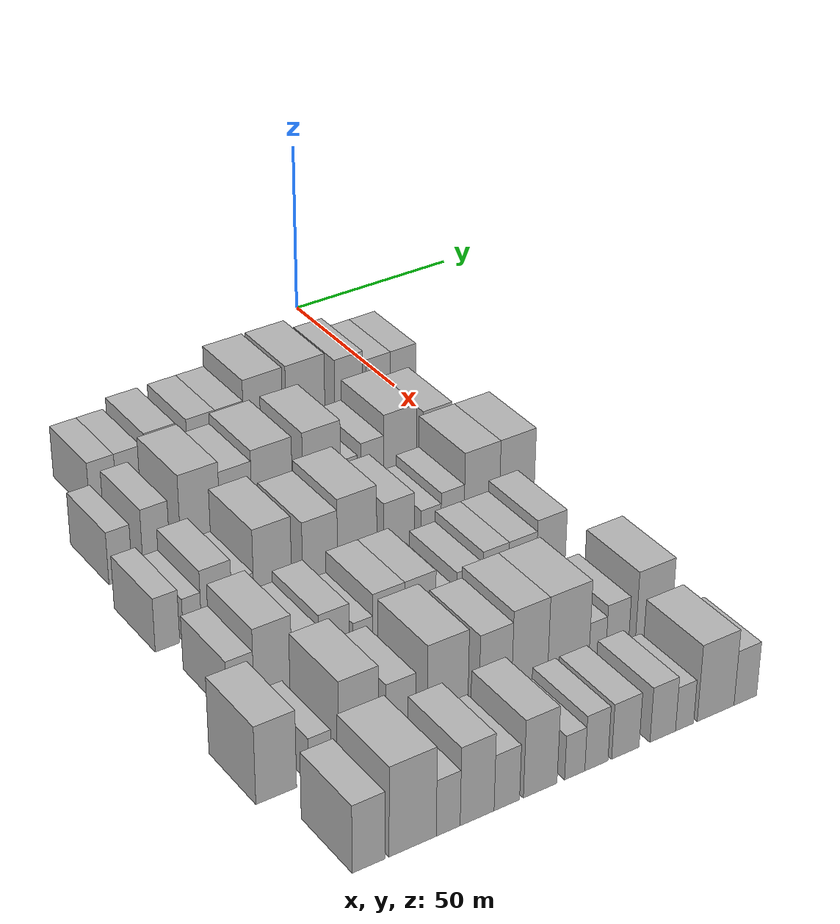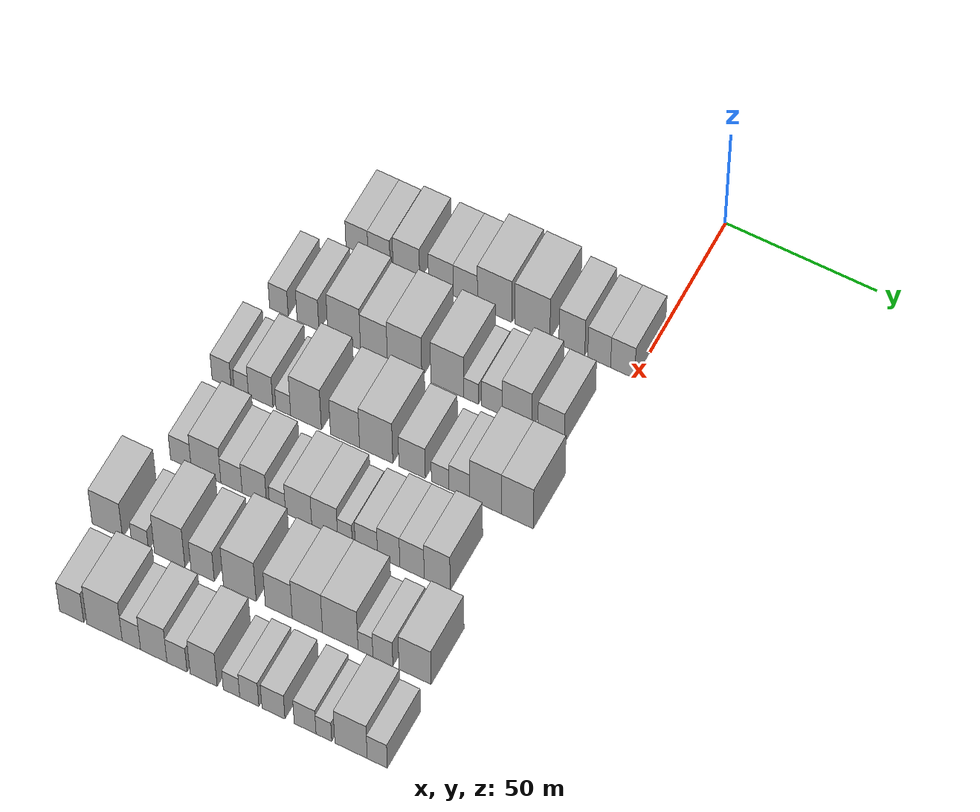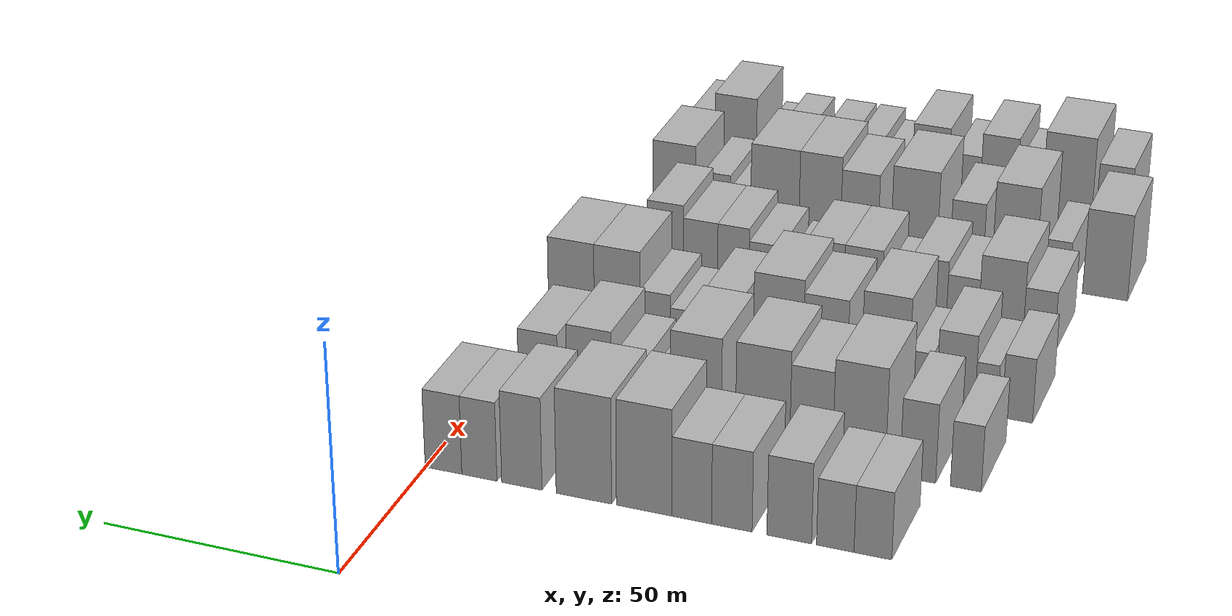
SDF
<sdf version="1.6">
 <world name="default">
  <model name="building_46">
   <static>1</static>
   <pose>50.0000 -92.5808 0 0.000000 0.000000 0.000000</pose>
   <link name="link">
    <pose>0 0 7.50 0 0 0</pose>
    <collision name="collision"><geometry><box><size>20.0000 7.4687 15.0000</size></box></geometry></collision>
    <visual name="visual">
     <cast_shadows>0</cast_shadows>
     <geometry><box><size>20.0000 7.4687 15.0000</size></box></geometry>
     <material>
      <script>
       <uri>model://HANNAS_wall/materials/scripts</uri>
       <uri>model://HANNAS_wall/materials/textures</uri>
       <name>vrc/HANNAS_wall</name>
      </script>
     </material>
    </visual>
   </link>
  </model>
  <model name="building_47">
   <static>1</static>
   <pose>50.0000 -85.1229 0 0.000000 0.000000 0.000000</pose>
   <link name="link">
    <pose>0 0 7.50 0 0 0</pose>
    <collision name="collision"><geometry><box><size>20.0000 7.4471 15.0000</size></box></geometry></collision>
    <visual name="visual">
     <cast_shadows>0</cast_shadows>
     <geometry><box><size>20.0000 7.4471 15.0000</size></box></geometry>
     <material>
      <script>
       <uri>model://HANNAS_wall/materials/scripts</uri>
       <uri>model://HANNAS_wall/materials/textures</uri>
       <name>vrc/HANNAS_wall</name>
      </script>
     </material>
    </visual>
   </link>
  </model>
  <model name="building_48">
   <static>1</static>
   <pose>50.0000 -75.9214 0 0.000000 0.000000 0.000000</pose>
   <link name="link">
    <pose>0 0 9.00 0 0 0</pose>
    <collision name="collision"><geometry><box><size>20.0000 8.9559 18.0000</size></box></geometry></collision>
    <visual name="visual">
     <cast_shadows>0</cast_shadows>
     <geometry><box><size>20.0000 8.9559 18.0000</size></box></geometry>
     <material>
      <script>
       <uri>model://HANNAS_wall/materials/scripts</uri>
       <uri>model://HANNAS_wall/materials/textures</uri>
       <name>vrc/HANNAS_wall</name>
      </script>
     </material>
    </visual>
   </link>
  </model>
  <model name="building_49">
   <static>1</static>
   <pose>50.0000 -64.3194 0 0.000000 0.000000 0.000000</pose>
   <link name="link">
    <pose>0 0 9.00 0 0 0</pose>
    <collision name="collision"><geometry><box><size>20.0000 8.2482 18.0000</size></box></geometry></collision>
    <visual name="visual">
     <cast_shadows>0</cast_shadows>
     <geometry><box><size>20.0000 8.2482 18.0000</size></box></geometry>
     <material>
      <script>
       <uri>model://HANNAS_wall/materials/scripts</uri>
       <uri>model://HANNAS_wall/materials/textures</uri>
       <name>vrc/HANNAS_wall</name>
      </script>
     </material>
    </visual>
   </link>
  </model>
  <model name="building_50">
   <static>1</static>
   <pose>50.0000 -56.1262 0 0.000000 0.000000 0.000000</pose>
   <link name="link">
    <pose>0 0 9.00 0 0 0</pose>
    <collision name="collision"><geometry><box><size>20.0000 8.1383 18.0000</size></box></geometry></collision>
    <visual name="visual">
     <cast_shadows>0</cast_shadows>
     <geometry><box><size>20.0000 8.1383 18.0000</size></box></geometry>
     <material>
      <script>
       <uri>model://HANNAS_wall/materials/scripts</uri>
       <uri>model://HANNAS_wall/materials/textures</uri>
       <name>vrc/HANNAS_wall</name>
      </script>
     </material>
    </visual>
   </link>
  </model>
  <model name="building_51">
   <static>1</static>
   <pose>50.0000 -46.3112 0 0.000000 0.000000 0.000000</pose>
   <link name="link">
    <pose>0 0 12.00 0 0 0</pose>
    <collision name="collision"><geometry><box><size>20.0000 11.4917 24.0000</size></box></geometry></collision>
    <visual name="visual">
     <cast_shadows>0</cast_shadows>
     <geometry><box><size>20.0000 11.4917 24.0000</size></box></geometry>
     <material>
      <script>
       <uri>model://HANNAS_wall/materials/scripts</uri>
       <uri>model://HANNAS_wall/materials/textures</uri>
       <name>vrc/HANNAS_wall</name>
      </script>
     </material>
    </visual>
   </link>
  </model>
  <model name="building_52">
   <static>1</static>
   <pose>50.0000 -33.7437 0 0.000000 0.000000 0.000000</pose>
   <link name="link">
    <pose>0 0 12.00 0 0 0</pose>
    <collision name="collision"><geometry><box><size>20.0000 11.6433 24.0000</size></box></geometry></collision>
    <visual name="visual">
     <cast_shadows>0</cast_shadows>
     <geometry><box><size>20.0000 11.6433 24.0000</size></box></geometry>
     <material>
      <script>
       <uri>model://HANNAS_wall/materials/scripts</uri>
       <uri>model://HANNAS_wall/materials/textures</uri>
       <name>vrc/HANNAS_wall</name>
      </script>
     </material>
    </visual>
   </link>
  </model>
  <model name="building_53">
   <static>1</static>
   <pose>50.0000 -20.6224 0 0.000000 0.000000 0.000000</pose>
   <link name="link">
    <pose>0 0 10.50 0 0 0</pose>
    <collision name="collision"><geometry><box><size>20.0000 8.5992 21.0000</size></box></geometry></collision>
    <visual name="visual">
     <cast_shadows>0</cast_shadows>
     <geometry><box><size>20.0000 8.5992 21.0000</size></box></geometry>
     <material>
      <script>
       <uri>model://HANNAS_wall/materials/scripts</uri>
       <uri>model://HANNAS_wall/materials/textures</uri>
       <name>vrc/HANNAS_wall</name>
      </script>
     </material>
    </visual>
   </link>
  </model>
  <model name="building_54">
   <static>1</static>
   <pose>50.0000 -11.5425 0 0.000000 0.000000 0.000000</pose>
   <link name="link">
    <pose>0 0 9.00 0 0 0</pose>
    <collision name="collision"><geometry><box><size>20.0000 7.5606 18.0000</size></box></geometry></collision>
    <visual name="visual">
     <cast_shadows>0</cast_shadows>
     <geometry><box><size>20.0000 7.5606 18.0000</size></box></geometry>
     <material>
      <script>
       <uri>model://HANNAS_wall/materials/scripts</uri>
       <uri>model://HANNAS_wall/materials/textures</uri>
       <name>vrc/HANNAS_wall</name>
      </script>
     </material>
    </visual>
   </link>
  </model>
  <model name="building_55">
   <static>1</static>
   <pose>50.0000 -3.7868 0 0.000000 0.000000 0.000000</pose>
   <link name="link">
    <pose>0 0 9.00 0 0 0</pose>
    <collision name="collision"><geometry><box><size>20.0000 7.9507 18.0000</size></box></geometry></collision>
    <visual name="visual">
     <cast_shadows>0</cast_shadows>
     <geometry><box><size>20.0000 7.9507 18.0000</size></box></geometry>
     <material>
      <script>
       <uri>model://HANNAS_wall/materials/scripts</uri>
       <uri>model://HANNAS_wall/materials/textures</uri>
       <name>vrc/HANNAS_wall</name>
      </script>
     </material>
    </visual>
   </link>
  </model>
  <model name="building_154">
   <static>1</static>
   <pose>79.0000 -103.1418 0 0.000000 0.000000 0.000000</pose>
   <link name="link">
    <pose>0 0 7.50 0 0 0</pose>
    <collision name="collision"><geometry><box><size>20.0000 6.2578 15.0000</size></box></geometry></collision>
    <visual name="visual">
     <cast_shadows>0</cast_shadows>
     <geometry><box><size>20.0000 6.2578 15.0000</size></box></geometry>
     <material>
      <script>
       <uri>model://HANNAS_wall/materials/scripts</uri>
       <uri>model://HANNAS_wall/materials/textures</uri>
       <name>vrc/HANNAS_wall</name>
      </script>
     </material>
    </visual>
   </link>
  </model>
  <model name="building_155">
   <static>1</static>
   <pose>79.0000 -93.3405 0 0.000000 0.000000 0.000000</pose>
   <link name="link">
    <pose>0 0 9.00 0 0 0</pose>
    <collision name="collision"><geometry><box><size>20.0000 7.3448 18.0000</size></box></geometry></collision>
    <visual name="visual">
     <cast_shadows>0</cast_shadows>
     <geometry><box><size>20.0000 7.3448 18.0000</size></box></geometry>
     <material>
      <script>
       <uri>model://HANNAS_wall/materials/scripts</uri>
       <uri>model://HANNAS_wall/materials/textures</uri>
       <name>vrc/HANNAS_wall</name>
      </script>
     </material>
    </visual>
   </link>
  </model>
  <model name="building_156">
   <static>1</static>
   <pose>79.0000 -81.1883 0 0.000000 0.000000 0.000000</pose>
   <link name="link">
    <pose>0 0 12.00 0 0 0</pose>
    <collision name="collision"><geometry><box><size>20.0000 10.9596 24.0000</size></box></geometry></collision>
    <visual name="visual">
     <cast_shadows>0</cast_shadows>
     <geometry><box><size>20.0000 10.9596 24.0000</size></box></geometry>
     <material>
      <script>
       <uri>model://HANNAS_wall/materials/scripts</uri>
       <uri>model://HANNAS_wall/materials/textures</uri>
       <name>vrc/HANNAS_wall</name>
      </script>
     </material>
    </visual>
   </link>
  </model>
  <model name="building_157">
   <static>1</static>
   <pose>79.0000 -71.2107 0 0.000000 0.000000 0.000000</pose>
   <link name="link">
    <pose>0 0 10.50 0 0 0</pose>
    <collision name="collision"><geometry><box><size>20.0000 8.9955 21.0000</size></box></geometry></collision>
    <visual name="visual">
     <cast_shadows>0</cast_shadows>
     <geometry><box><size>20.0000 8.9955 21.0000</size></box></geometry>
     <material>
      <script>
       <uri>model://HANNAS_wall/materials/scripts</uri>
       <uri>model://HANNAS_wall/materials/textures</uri>
       <name>vrc/HANNAS_wall</name>
      </script>
     </material>
    </visual>
   </link>
  </model>
  <model name="building_158">
   <static>1</static>
   <pose>79.0000 -60.9767 0 0.000000 0.000000 0.000000</pose>
   <link name="link">
    <pose>0 0 12.00 0 0 0</pose>
    <collision name="collision"><geometry><box><size>20.0000 11.4724 24.0000</size></box></geometry></collision>
    <visual name="visual">
     <cast_shadows>0</cast_shadows>
     <geometry><box><size>20.0000 11.4724 24.0000</size></box></geometry>
     <material>
      <script>
       <uri>model://HANNAS_wall/materials/scripts</uri>
       <uri>model://HANNAS_wall/materials/textures</uri>
       <name>vrc/HANNAS_wall</name>
      </script>
     </material>
    </visual>
   </link>
  </model>
  <model name="building_159">
   <static>1</static>
   <pose>79.0000 -46.7814 0 0.000000 0.000000 0.000000</pose>
   <link name="link">
    <pose>0 0 12.00 0 0 0</pose>
    <collision name="collision"><geometry><box><size>20.0000 10.9182 24.0000</size></box></geometry></collision>
    <visual name="visual">
     <cast_shadows>0</cast_shadows>
     <geometry><box><size>20.0000 10.9182 24.0000</size></box></geometry>
     <material>
      <script>
       <uri>model://HANNAS_wall/materials/scripts</uri>
       <uri>model://HANNAS_wall/materials/textures</uri>
       <name>vrc/HANNAS_wall</name>
      </script>
     </material>
    </visual>
   </link>
  </model>
  <model name="building_160">
   <static>1</static>
   <pose>79.0000 -38.8600 0 0.000000 0.000000 0.000000</pose>
   <link name="link">
    <pose>0 0 6.00 0 0 0</pose>
    <collision name="collision"><geometry><box><size>20.0000 4.9247 12.0000</size></box></geometry></collision>
    <visual name="visual">
     <cast_shadows>0</cast_shadows>
     <geometry><box><size>20.0000 4.9247 12.0000</size></box></geometry>
     <material>
      <script>
       <uri>model://HANNAS_wall/materials/scripts</uri>
       <uri>model://HANNAS_wall/materials/textures</uri>
       <name>vrc/HANNAS_wall</name>
      </script>
     </material>
    </visual>
   </link>
  </model>
  <model name="building_161">
   <static>1</static>
   <pose>79.0000 -31.9827 0 0.000000 0.000000 0.000000</pose>
   <link name="link">
    <pose>0 0 7.50 0 0 0</pose>
    <collision name="collision"><geometry><box><size>20.0000 6.8297 15.0000</size></box></geometry></collision>
    <visual name="visual">
     <cast_shadows>0</cast_shadows>
     <geometry><box><size>20.0000 6.8297 15.0000</size></box></geometry>
     <material>
      <script>
       <uri>model://HANNAS_wall/materials/scripts</uri>
       <uri>model://HANNAS_wall/materials/textures</uri>
       <name>vrc/HANNAS_wall</name>
      </script>
     </material>
    </visual>
   </link>
  </model>
  <model name="building_162">
   <static>1</static>
   <pose>79.0000 -23.6695 0 0.000000 0.000000 0.000000</pose>
   <link name="link">
    <pose>0 0 10.50 0 0 0</pose>
    <collision name="collision"><geometry><box><size>20.0000 9.7967 21.0000</size></box></geometry></collision>
    <visual name="visual">
     <cast_shadows>0</cast_shadows>
     <geometry><box><size>20.0000 9.7967 21.0000</size></box></geometry>
     <material>
      <script>
       <uri>model://HANNAS_wall/materials/scripts</uri>
       <uri>model://HANNAS_wall/materials/textures</uri>
       <name>vrc/HANNAS_wall</name>
      </script>
     </material>
    </visual>
   </link>
  </model>
  <model name="building_163">
   <static>1</static>
   <pose>79.0000 -12.4362 0 0.000000 0.000000 0.000000</pose>
   <link name="link">
    <pose>0 0 9.00 0 0 0</pose>
    <collision name="collision"><geometry><box><size>20.0000 8.6699 18.0000</size></box></geometry></collision>
    <visual name="visual">
     <cast_shadows>0</cast_shadows>
     <geometry><box><size>20.0000 8.6699 18.0000</size></box></geometry>
     <material>
      <script>
       <uri>model://HANNAS_wall/materials/scripts</uri>
       <uri>model://HANNAS_wall/materials/textures</uri>
       <name>vrc/HANNAS_wall</name>
      </script>
     </material>
    </visual>
   </link>
  </model>
  <model name="building_266">
   <static>1</static>
   <pose>108.0000 -106.3986 0 0.000000 0.000000 0.000000</pose>
   <link name="link">
    <pose>0 0 7.50 0 0 0</pose>
    <collision name="collision"><geometry><box><size>20.0000 6.4155 15.0000</size></box></geometry></collision>
    <visual name="visual">
     <cast_shadows>0</cast_shadows>
     <geometry><box><size>20.0000 6.4155 15.0000</size></box></geometry>
     <material>
      <script>
       <uri>model://HANNAS_wall/materials/scripts</uri>
       <uri>model://HANNAS_wall/materials/textures</uri>
       <name>vrc/HANNAS_wall</name>
      </script>
     </material>
    </visual>
   </link>
  </model>
  <model name="building_267">
   <static>1</static>
   <pose>108.0000 -99.7860 0 0.000000 0.000000 0.000000</pose>
   <link name="link">
    <pose>0 0 6.00 0 0 0</pose>
    <collision name="collision"><geometry><box><size>20.0000 4.8097 12.0000</size></box></geometry></collision>
    <visual name="visual">
     <cast_shadows>0</cast_shadows>
     <geometry><box><size>20.0000 4.8097 12.0000</size></box></geometry>
     <material>
      <script>
       <uri>model://HANNAS_wall/materials/scripts</uri>
       <uri>model://HANNAS_wall/materials/textures</uri>
       <name>vrc/HANNAS_wall</name>
      </script>
     </material>
    </visual>
   </link>
  </model>
  <model name="building_268">
   <static>1</static>
   <pose>108.0000 -93.2924 0 0.000000 0.000000 0.000000</pose>
   <link name="link">
    <pose>0 0 9.00 0 0 0</pose>
    <collision name="collision"><geometry><box><size>20.0000 8.1775 18.0000</size></box></geometry></collision>
    <visual name="visual">
     <cast_shadows>0</cast_shadows>
     <geometry><box><size>20.0000 8.1775 18.0000</size></box></geometry>
     <material>
      <script>
       <uri>model://HANNAS_wall/materials/scripts</uri>
       <uri>model://HANNAS_wall/materials/textures</uri>
       <name>vrc/HANNAS_wall</name>
      </script>
     </material>
    </visual>
   </link>
  </model>
  <model name="building_269">
   <static>1</static>
   <pose>108.0000 -85.7434 0 0.000000 0.000000 0.000000</pose>
   <link name="link">
    <pose>0 0 6.00 0 0 0</pose>
    <collision name="collision"><geometry><box><size>20.0000 4.9205 12.0000</size></box></geometry></collision>
    <visual name="visual">
     <cast_shadows>0</cast_shadows>
     <geometry><box><size>20.0000 4.9205 12.0000</size></box></geometry>
     <material>
      <script>
       <uri>model://HANNAS_wall/materials/scripts</uri>
       <uri>model://HANNAS_wall/materials/textures</uri>
       <name>vrc/HANNAS_wall</name>
      </script>
     </material>
    </visual>
   </link>
  </model>
  <model name="building_270">
   <static>1</static>
   <pose>108.0000 -78.1503 0 0.000000 0.000000 0.000000</pose>
   <link name="link">
    <pose>0 0 12.00 0 0 0</pose>
    <collision name="collision"><geometry><box><size>20.0000 10.2657 24.0000</size></box></geometry></collision>
    <visual name="visual">
     <cast_shadows>0</cast_shadows>
     <geometry><box><size>20.0000 10.2657 24.0000</size></box></geometry>
     <material>
      <script>
       <uri>model://HANNAS_wall/materials/scripts</uri>
       <uri>model://HANNAS_wall/materials/textures</uri>
       <name>vrc/HANNAS_wall</name>
      </script>
     </material>
    </visual>
   </link>
  </model>
  <model name="building_271">
   <static>1</static>
   <pose>108.0000 -65.1845 0 0.000000 0.000000 0.000000</pose>
   <link name="link">
    <pose>0 0 10.50 0 0 0</pose>
    <collision name="collision"><geometry><box><size>20.0000 9.6660 21.0000</size></box></geometry></collision>
    <visual name="visual">
     <cast_shadows>0</cast_shadows>
     <geometry><box><size>20.0000 9.6660 21.0000</size></box></geometry>
     <material>
      <script>
       <uri>model://HANNAS_wall/materials/scripts</uri>
       <uri>model://HANNAS_wall/materials/textures</uri>
       <name>vrc/HANNAS_wall</name>
      </script>
     </material>
    </visual>
   </link>
  </model>
  <model name="building_272">
   <static>1</static>
   <pose>108.0000 -54.8448 0 0.000000 0.000000 0.000000</pose>
   <link name="link">
    <pose>0 0 12.00 0 0 0</pose>
    <collision name="collision"><geometry><box><size>20.0000 11.0133 24.0000</size></box></geometry></collision>
    <visual name="visual">
     <cast_shadows>0</cast_shadows>
     <geometry><box><size>20.0000 11.0133 24.0000</size></box></geometry>
     <material>
      <script>
       <uri>model://HANNAS_wall/materials/scripts</uri>
       <uri>model://HANNAS_wall/materials/textures</uri>
       <name>vrc/HANNAS_wall</name>
      </script>
     </material>
    </visual>
   </link>
  </model>
  <model name="building_273">
   <static>1</static>
   <pose>108.0000 -42.9701 0 0.000000 0.000000 0.000000</pose>
   <link name="link">
    <pose>0 0 9.00 0 0 0</pose>
    <collision name="collision"><geometry><box><size>20.0000 8.7361 18.0000</size></box></geometry></collision>
    <visual name="visual">
     <cast_shadows>0</cast_shadows>
     <geometry><box><size>20.0000 8.7361 18.0000</size></box></geometry>
     <material>
      <script>
       <uri>model://HANNAS_wall/materials/scripts</uri>
       <uri>model://HANNAS_wall/materials/textures</uri>
       <name>vrc/HANNAS_wall</name>
      </script>
     </material>
    </visual>
   </link>
  </model>
  <model name="building_274">
   <static>1</static>
   <pose>108.0000 -33.7330 0 0.000000 0.000000 0.000000</pose>
   <link name="link">
    <pose>0 0 6.00 0 0 0</pose>
    <collision name="collision"><geometry><box><size>20.0000 5.7382 12.0000</size></box></geometry></collision>
    <visual name="visual">
     <cast_shadows>0</cast_shadows>
     <geometry><box><size>20.0000 5.7382 12.0000</size></box></geometry>
     <material>
      <script>
       <uri>model://HANNAS_wall/materials/scripts</uri>
       <uri>model://HANNAS_wall/materials/textures</uri>
       <name>vrc/HANNAS_wall</name>
      </script>
     </material>
    </visual>
   </link>
  </model>
  <model name="building_275">
   <static>1</static>
   <pose>108.0000 -27.4761 0 0.000000 0.000000 0.000000</pose>
   <link name="link">
    <pose>0 0 7.50 0 0 0</pose>
    <collision name="collision"><geometry><box><size>20.0000 6.7756 15.0000</size></box></geometry></collision>
    <visual name="visual">
     <cast_shadows>0</cast_shadows>
     <geometry><box><size>20.0000 6.7756 15.0000</size></box></geometry>
     <material>
      <script>
       <uri>model://HANNAS_wall/materials/scripts</uri>
       <uri>model://HANNAS_wall/materials/textures</uri>
       <name>vrc/HANNAS_wall</name>
      </script>
     </material>
    </visual>
   </link>
  </model>
  <model name="building_276">
   <static>1</static>
   <pose>108.0000 -18.8655 0 0.000000 0.000000 0.000000</pose>
   <link name="link">
    <pose>0 0 12.00 0 0 0</pose>
    <collision name="collision"><geometry><box><size>20.0000 10.4457 24.0000</size></box></geometry></collision>
    <visual name="visual">
     <cast_shadows>0</cast_shadows>
     <geometry><box><size>20.0000 10.4457 24.0000</size></box></geometry>
     <material>
      <script>
       <uri>model://HANNAS_wall/materials/scripts</uri>
       <uri>model://HANNAS_wall/materials/textures</uri>
       <name>vrc/HANNAS_wall</name>
      </script>
     </material>
    </visual>
   </link>
  </model>
  <model name="building_277">
   <static>1</static>
   <pose>108.0000 -8.4006 0 0.000000 0.000000 0.000000</pose>
   <link name="link">
    <pose>0 0 12.00 0 0 0</pose>
    <collision name="collision"><geometry><box><size>20.0000 10.4841 24.0000</size></box></geometry></collision>
    <visual name="visual">
     <cast_shadows>0</cast_shadows>
     <geometry><box><size>20.0000 10.4841 24.0000</size></box></geometry>
     <material>
      <script>
       <uri>model://HANNAS_wall/materials/scripts</uri>
       <uri>model://HANNAS_wall/materials/textures</uri>
       <name>vrc/HANNAS_wall</name>
      </script>
     </material>
    </visual>
   </link>
  </model>
  <model name="building_381">
   <static>1</static>
   <pose>137.0000 -103.8571 0 0.000000 0.000000 0.000000</pose>
   <link name="link">
    <pose>0 0 7.50 0 0 0</pose>
    <collision name="collision"><geometry><box><size>20.0000 6.9240 15.0000</size></box></geometry></collision>
    <visual name="visual">
     <cast_shadows>0</cast_shadows>
     <geometry><box><size>20.0000 6.9240 15.0000</size></box></geometry>
     <material>
      <script>
       <uri>model://HANNAS_wall/materials/scripts</uri>
       <uri>model://HANNAS_wall/materials/textures</uri>
       <name>vrc/HANNAS_wall</name>
      </script>
     </material>
    </visual>
   </link>
  </model>
  <model name="building_382">
   <static>1</static>
   <pose>137.0000 -95.4674 0 0.000000 0.000000 0.000000</pose>
   <link name="link">
    <pose>0 0 10.50 0 0 0</pose>
    <collision name="collision"><geometry><box><size>20.0000 9.8554 21.0000</size></box></geometry></collision>
    <visual name="visual">
     <cast_shadows>0</cast_shadows>
     <geometry><box><size>20.0000 9.8554 21.0000</size></box></geometry>
     <material>
      <script>
       <uri>model://HANNAS_wall/materials/scripts</uri>
       <uri>model://HANNAS_wall/materials/textures</uri>
       <name>vrc/HANNAS_wall</name>
      </script>
     </material>
    </visual>
   </link>
  </model>
  <model name="building_383">
   <static>1</static>
   <pose>137.0000 -87.0001 0 0.000000 0.000000 0.000000</pose>
   <link name="link">
    <pose>0 0 7.50 0 0 0</pose>
    <collision name="collision"><geometry><box><size>20.0000 7.0792 15.0000</size></box></geometry></collision>
    <visual name="visual">
     <cast_shadows>0</cast_shadows>
     <geometry><box><size>20.0000 7.0792 15.0000</size></box></geometry>
     <material>
      <script>
       <uri>model://HANNAS_wall/materials/scripts</uri>
       <uri>model://HANNAS_wall/materials/textures</uri>
       <name>vrc/HANNAS_wall</name>
      </script>
     </material>
    </visual>
   </link>
  </model>
  <model name="building_384">
   <static>1</static>
   <pose>137.0000 -79.4112 0 0.000000 0.000000 0.000000</pose>
   <link name="link">
    <pose>0 0 9.00 0 0 0</pose>
    <collision name="collision"><geometry><box><size>20.0000 8.0986 18.0000</size></box></geometry></collision>
    <visual name="visual">
     <cast_shadows>0</cast_shadows>
     <geometry><box><size>20.0000 8.0986 18.0000</size></box></geometry>
     <material>
      <script>
       <uri>model://HANNAS_wall/materials/scripts</uri>
       <uri>model://HANNAS_wall/materials/textures</uri>
       <name>vrc/HANNAS_wall</name>
      </script>
     </material>
    </visual>
   </link>
  </model>
  <model name="building_385">
   <static>1</static>
   <pose>137.0000 -71.7233 0 0.000000 0.000000 0.000000</pose>
   <link name="link">
    <pose>0 0 6.00 0 0 0</pose>
    <collision name="collision"><geometry><box><size>20.0000 5.2771 12.0000</size></box></geometry></collision>
    <visual name="visual">
     <cast_shadows>0</cast_shadows>
     <geometry><box><size>20.0000 5.2771 12.0000</size></box></geometry>
     <material>
      <script>
       <uri>model://HANNAS_wall/materials/scripts</uri>
       <uri>model://HANNAS_wall/materials/textures</uri>
       <name>vrc/HANNAS_wall</name>
      </script>
     </material>
    </visual>
   </link>
  </model>
  <model name="building_386">
   <static>1</static>
   <pose>137.0000 -64.7587 0 0.000000 0.000000 0.000000</pose>
   <link name="link">
    <pose>0 0 9.00 0 0 0</pose>
    <collision name="collision"><geometry><box><size>20.0000 8.6523 18.0000</size></box></geometry></collision>
    <visual name="visual">
     <cast_shadows>0</cast_shadows>
     <geometry><box><size>20.0000 8.6523 18.0000</size></box></geometry>
     <material>
      <script>
       <uri>model://HANNAS_wall/materials/scripts</uri>
       <uri>model://HANNAS_wall/materials/textures</uri>
       <name>vrc/HANNAS_wall</name>
      </script>
     </material>
    </visual>
   </link>
  </model>
  <model name="building_387">
   <static>1</static>
   <pose>137.0000 -56.1689 0 0.000000 0.000000 0.000000</pose>
   <link name="link">
    <pose>0 0 9.00 0 0 0</pose>
    <collision name="collision"><geometry><box><size>20.0000 8.5272 18.0000</size></box></geometry></collision>
    <visual name="visual">
     <cast_shadows>0</cast_shadows>
     <geometry><box><size>20.0000 8.5272 18.0000</size></box></geometry>
     <material>
      <script>
       <uri>model://HANNAS_wall/materials/scripts</uri>
       <uri>model://HANNAS_wall/materials/textures</uri>
       <name>vrc/HANNAS_wall</name>
      </script>
     </material>
    </visual>
   </link>
  </model>
  <model name="building_388">
   <static>1</static>
   <pose>137.0000 -49.4982 0 0.000000 0.000000 0.000000</pose>
   <link name="link">
    <pose>0 0 6.00 0 0 0</pose>
    <collision name="collision"><geometry><box><size>20.0000 4.8143 12.0000</size></box></geometry></collision>
    <visual name="visual">
     <cast_shadows>0</cast_shadows>
     <geometry><box><size>20.0000 4.8143 12.0000</size></box></geometry>
     <material>
      <script>
       <uri>model://HANNAS_wall/materials/scripts</uri>
       <uri>model://HANNAS_wall/materials/textures</uri>
       <name>vrc/HANNAS_wall</name>
      </script>
     </material>
    </visual>
   </link>
  </model>
  <model name="building_389">
   <static>1</static>
   <pose>137.0000 -42.4382 0 0.000000 0.000000 0.000000</pose>
   <link name="link">
    <pose>0 0 7.50 0 0 0</pose>
    <collision name="collision"><geometry><box><size>20.0000 7.3056 15.0000</size></box></geometry></collision>
    <visual name="visual">
     <cast_shadows>0</cast_shadows>
     <geometry><box><size>20.0000 7.3056 15.0000</size></box></geometry>
     <material>
      <script>
       <uri>model://HANNAS_wall/materials/scripts</uri>
       <uri>model://HANNAS_wall/materials/textures</uri>
       <name>vrc/HANNAS_wall</name>
      </script>
     </material>
    </visual>
   </link>
  </model>
  <model name="building_390">
   <static>1</static>
   <pose>137.0000 -35.1333 0 0.000000 0.000000 0.000000</pose>
   <link name="link">
    <pose>0 0 9.00 0 0 0</pose>
    <collision name="collision"><geometry><box><size>20.0000 7.3041 18.0000</size></box></geometry></collision>
    <visual name="visual">
     <cast_shadows>0</cast_shadows>
     <geometry><box><size>20.0000 7.3041 18.0000</size></box></geometry>
     <material>
      <script>
       <uri>model://HANNAS_wall/materials/scripts</uri>
       <uri>model://HANNAS_wall/materials/textures</uri>
       <name>vrc/HANNAS_wall</name>
      </script>
     </material>
    </visual>
   </link>
  </model>
  <model name="building_391">
   <static>1</static>
   <pose>137.0000 -27.4933 0 0.000000 0.000000 0.000000</pose>
   <link name="link">
    <pose>0 0 9.00 0 0 0</pose>
    <collision name="collision"><geometry><box><size>20.0000 7.9760 18.0000</size></box></geometry></collision>
    <visual name="visual">
     <cast_shadows>0</cast_shadows>
     <geometry><box><size>20.0000 7.9760 18.0000</size></box></geometry>
     <material>
      <script>
       <uri>model://HANNAS_wall/materials/scripts</uri>
       <uri>model://HANNAS_wall/materials/textures</uri>
       <name>vrc/HANNAS_wall</name>
      </script>
     </material>
    </visual>
   </link>
  </model>
  <model name="building_392">
   <static>1</static>
   <pose>137.0000 -19.2705 0 0.000000 0.000000 0.000000</pose>
   <link name="link">
    <pose>0 0 10.50 0 0 0</pose>
    <collision name="collision"><geometry><box><size>20.0000 8.4695 21.0000</size></box></geometry></collision>
    <visual name="visual">
     <cast_shadows>0</cast_shadows>
     <geometry><box><size>20.0000 8.4695 21.0000</size></box></geometry>
     <material>
      <script>
       <uri>model://HANNAS_wall/materials/scripts</uri>
       <uri>model://HANNAS_wall/materials/textures</uri>
       <name>vrc/HANNAS_wall</name>
      </script>
     </material>
    </visual>
   </link>
  </model>
  <model name="building_493">
   <static>1</static>
   <pose>166.0000 -112.0260 0 0.000000 0.000000 0.000000</pose>
   <link name="link">
    <pose>0 0 10.50 0 0 0</pose>
    <collision name="collision"><geometry><box><size>20.0000 10.0948 21.0000</size></box></geometry></collision>
    <visual name="visual">
     <cast_shadows>0</cast_shadows>
     <geometry><box><size>20.0000 10.0948 21.0000</size></box></geometry>
     <material>
      <script>
       <uri>model://HANNAS_wall/materials/scripts</uri>
       <uri>model://HANNAS_wall/materials/textures</uri>
       <name>vrc/HANNAS_wall</name>
      </script>
     </material>
    </visual>
   </link>
  </model>
  <model name="building_494">
   <static>1</static>
   <pose>166.0000 -101.1664 0 0.000000 0.000000 0.000000</pose>
   <link name="link">
    <pose>0 0 6.00 0 0 0</pose>
    <collision name="collision"><geometry><box><size>20.0000 5.6244 12.0000</size></box></geometry></collision>
    <visual name="visual">
     <cast_shadows>0</cast_shadows>
     <geometry><box><size>20.0000 5.6244 12.0000</size></box></geometry>
     <material>
      <script>
       <uri>model://HANNAS_wall/materials/scripts</uri>
       <uri>model://HANNAS_wall/materials/textures</uri>
       <name>vrc/HANNAS_wall</name>
      </script>
     </material>
    </visual>
   </link>
  </model>
  <model name="building_495">
   <static>1</static>
   <pose>166.0000 -91.3128 0 0.000000 0.000000 0.000000</pose>
   <link name="link">
    <pose>0 0 12.00 0 0 0</pose>
    <collision name="collision"><geometry><box><size>20.0000 10.0829 24.0000</size></box></geometry></collision>
    <visual name="visual">
     <cast_shadows>0</cast_shadows>
     <geometry><box><size>20.0000 10.0829 24.0000</size></box></geometry>
     <material>
      <script>
       <uri>model://HANNAS_wall/materials/scripts</uri>
       <uri>model://HANNAS_wall/materials/textures</uri>
       <name>vrc/HANNAS_wall</name>
      </script>
     </material>
    </visual>
   </link>
  </model>
  <model name="building_496">
   <static>1</static>
   <pose>166.0000 -80.4302 0 0.000000 0.000000 0.000000</pose>
   <link name="link">
    <pose>0 0 9.00 0 0 0</pose>
    <collision name="collision"><geometry><box><size>20.0000 7.6822 18.0000</size></box></geometry></collision>
    <visual name="visual">
     <cast_shadows>0</cast_shadows>
     <geometry><box><size>20.0000 7.6822 18.0000</size></box></geometry>
     <material>
      <script>
       <uri>model://HANNAS_wall/materials/scripts</uri>
       <uri>model://HANNAS_wall/materials/textures</uri>
       <name>vrc/HANNAS_wall</name>
      </script>
     </material>
    </visual>
   </link>
  </model>
  <model name="building_497">
   <static>1</static>
   <pose>166.0000 -68.1920 0 0.000000 0.000000 0.000000</pose>
   <link name="link">
    <pose>0 0 12.00 0 0 0</pose>
    <collision name="collision"><geometry><box><size>20.0000 10.7942 24.0000</size></box></geometry></collision>
    <visual name="visual">
     <cast_shadows>0</cast_shadows>
     <geometry><box><size>20.0000 10.7942 24.0000</size></box></geometry>
     <material>
      <script>
       <uri>model://HANNAS_wall/materials/scripts</uri>
       <uri>model://HANNAS_wall/materials/textures</uri>
       <name>vrc/HANNAS_wall</name>
      </script>
     </material>
    </visual>
   </link>
  </model>
  <model name="building_498">
   <static>1</static>
   <pose>166.0000 -55.3844 0 0.000000 0.000000 0.000000</pose>
   <link name="link">
    <pose>0 0 10.50 0 0 0</pose>
    <collision name="collision"><geometry><box><size>20.0000 8.8209 21.0000</size></box></geometry></collision>
    <visual name="visual">
     <cast_shadows>0</cast_shadows>
     <geometry><box><size>20.0000 8.8209 21.0000</size></box></geometry>
     <material>
      <script>
       <uri>model://HANNAS_wall/materials/scripts</uri>
       <uri>model://HANNAS_wall/materials/textures</uri>
       <name>vrc/HANNAS_wall</name>
      </script>
     </material>
    </visual>
   </link>
  </model>
  <model name="building_499">
   <static>1</static>
   <pose>166.0000 -46.0244 0 0.000000 0.000000 0.000000</pose>
   <link name="link">
    <pose>0 0 12.00 0 0 0</pose>
    <collision name="collision"><geometry><box><size>20.0000 9.8991 24.0000</size></box></geometry></collision>
    <visual name="visual">
     <cast_shadows>0</cast_shadows>
     <geometry><box><size>20.0000 9.8991 24.0000</size></box></geometry>
     <material>
      <script>
       <uri>model://HANNAS_wall/materials/scripts</uri>
       <uri>model://HANNAS_wall/materials/textures</uri>
       <name>vrc/HANNAS_wall</name>
      </script>
     </material>
    </visual>
   </link>
  </model>
  <model name="building_500">
   <static>1</static>
   <pose>166.0000 -35.2926 0 0.000000 0.000000 0.000000</pose>
   <link name="link">
    <pose>0 0 12.00 0 0 0</pose>
    <collision name="collision"><geometry><box><size>20.0000 11.5645 24.0000</size></box></geometry></collision>
    <visual name="visual">
     <cast_shadows>0</cast_shadows>
     <geometry><box><size>20.0000 11.5645 24.0000</size></box></geometry>
     <material>
      <script>
       <uri>model://HANNAS_wall/materials/scripts</uri>
       <uri>model://HANNAS_wall/materials/textures</uri>
       <name>vrc/HANNAS_wall</name>
      </script>
     </material>
    </visual>
   </link>
  </model>
  <model name="building_501">
   <static>1</static>
   <pose>166.0000 -27.0960 0 0.000000 0.000000 0.000000</pose>
   <link name="link">
    <pose>0 0 6.00 0 0 0</pose>
    <collision name="collision"><geometry><box><size>20.0000 4.8288 12.0000</size></box></geometry></collision>
    <visual name="visual">
     <cast_shadows>0</cast_shadows>
     <geometry><box><size>20.0000 4.8288 12.0000</size></box></geometry>
     <material>
      <script>
       <uri>model://HANNAS_wall/materials/scripts</uri>
       <uri>model://HANNAS_wall/materials/textures</uri>
       <name>vrc/HANNAS_wall</name>
      </script>
     </material>
    </visual>
   </link>
  </model>
  <model name="building_502">
   <static>1</static>
   <pose>166.0000 -21.4399 0 0.000000 0.000000 0.000000</pose>
   <link name="link">
    <pose>0 0 7.50 0 0 0</pose>
    <collision name="collision"><geometry><box><size>20.0000 6.4834 15.0000</size></box></geometry></collision>
    <visual name="visual">
     <cast_shadows>0</cast_shadows>
     <geometry><box><size>20.0000 6.4834 15.0000</size></box></geometry>
     <material>
      <script>
       <uri>model://HANNAS_wall/materials/scripts</uri>
       <uri>model://HANNAS_wall/materials/textures</uri>
       <name>vrc/HANNAS_wall</name>
      </script>
     </material>
    </visual>
   </link>
  </model>
  <model name="building_503">
   <static>1</static>
   <pose>166.0000 -10.9867 0 0.000000 0.000000 0.000000</pose>
   <link name="link">
    <pose>0 0 10.50 0 0 0</pose>
    <collision name="collision"><geometry><box><size>20.0000 10.4229 21.0000</size></box></geometry></collision>
    <visual name="visual">
     <cast_shadows>0</cast_shadows>
     <geometry><box><size>20.0000 10.4229 21.0000</size></box></geometry>
     <material>
      <script>
       <uri>model://HANNAS_wall/materials/scripts</uri>
       <uri>model://HANNAS_wall/materials/textures</uri>
       <name>vrc/HANNAS_wall</name>
      </script>
     </material>
    </visual>
   </link>
  </model>
  <model name="building_605">
   <static>1</static>
   <pose>195.0000 -107.3223 0 0.000000 0.000000 0.000000</pose>
   <link name="link">
    <pose>0 0 9.00 0 0 0</pose>
    <collision name="collision"><geometry><box><size>20.0000 7.9897 18.0000</size></box></geometry></collision>
    <visual name="visual">
     <cast_shadows>0</cast_shadows>
     <geometry><box><size>20.0000 7.9897 18.0000</size></box></geometry>
     <material>
      <script>
       <uri>model://HANNAS_wall/materials/scripts</uri>
       <uri>model://HANNAS_wall/materials/textures</uri>
       <name>vrc/HANNAS_wall</name>
      </script>
     </material>
    </visual>
   </link>
  </model>
  <model name="building_606">
   <static>1</static>
   <pose>195.0000 -96.4875 0 0.000000 0.000000 0.000000</pose>
   <link name="link">
    <pose>0 0 12.00 0 0 0</pose>
    <collision name="collision"><geometry><box><size>20.0000 11.6799 24.0000</size></box></geometry></collision>
    <visual name="visual">
     <cast_shadows>0</cast_shadows>
     <geometry><box><size>20.0000 11.6799 24.0000</size></box></geometry>
     <material>
      <script>
       <uri>model://HANNAS_wall/materials/scripts</uri>
       <uri>model://HANNAS_wall/materials/textures</uri>
       <name>vrc/HANNAS_wall</name>
      </script>
     </material>
    </visual>
   </link>
  </model>
  <model name="building_607">
   <static>1</static>
   <pose>195.0000 -87.6309 0 0.000000 0.000000 0.000000</pose>
   <link name="link">
    <pose>0 0 7.50 0 0 0</pose>
    <collision name="collision"><geometry><box><size>20.0000 6.0334 15.0000</size></box></geometry></collision>
    <visual name="visual">
     <cast_shadows>0</cast_shadows>
     <geometry><box><size>20.0000 6.0334 15.0000</size></box></geometry>
     <material>
      <script>
       <uri>model://HANNAS_wall/materials/scripts</uri>
       <uri>model://HANNAS_wall/materials/textures</uri>
       <name>vrc/HANNAS_wall</name>
      </script>
     </material>
    </visual>
   </link>
  </model>
  <model name="building_608">
   <static>1</static>
   <pose>195.0000 -80.2841 0 0.000000 0.000000 0.000000</pose>
   <link name="link">
    <pose>0 0 10.50 0 0 0</pose>
    <collision name="collision"><geometry><box><size>20.0000 8.6600 21.0000</size></box></geometry></collision>
    <visual name="visual">
     <cast_shadows>0</cast_shadows>
     <geometry><box><size>20.0000 8.6600 21.0000</size></box></geometry>
     <material>
      <script>
       <uri>model://HANNAS_wall/materials/scripts</uri>
       <uri>model://HANNAS_wall/materials/textures</uri>
       <name>vrc/HANNAS_wall</name>
      </script>
     </material>
    </visual>
   </link>
  </model>
  <model name="building_609">
   <static>1</static>
   <pose>195.0000 -72.6601 0 0.000000 0.000000 0.000000</pose>
   <link name="link">
    <pose>0 0 7.50 0 0 0</pose>
    <collision name="collision"><geometry><box><size>20.0000 6.5880 15.0000</size></box></geometry></collision>
    <visual name="visual">
     <cast_shadows>0</cast_shadows>
     <geometry><box><size>20.0000 6.5880 15.0000</size></box></geometry>
     <material>
      <script>
       <uri>model://HANNAS_wall/materials/scripts</uri>
       <uri>model://HANNAS_wall/materials/textures</uri>
       <name>vrc/HANNAS_wall</name>
      </script>
     </material>
    </visual>
   </link>
  </model>
  <model name="building_610">
   <static>1</static>
   <pose>195.0000 -63.9569 0 0.000000 0.000000 0.000000</pose>
   <link name="link">
    <pose>0 0 10.50 0 0 0</pose>
    <collision name="collision"><geometry><box><size>20.0000 8.8185 21.0000</size></box></geometry></collision>
    <visual name="visual">
     <cast_shadows>0</cast_shadows>
     <geometry><box><size>20.0000 8.8185 21.0000</size></box></geometry>
     <material>
      <script>
       <uri>model://HANNAS_wall/materials/scripts</uri>
       <uri>model://HANNAS_wall/materials/textures</uri>
       <name>vrc/HANNAS_wall</name>
      </script>
     </material>
    </visual>
   </link>
  </model>
  <model name="building_611">
   <static>1</static>
   <pose>195.0000 -54.8545 0 0.000000 0.000000 0.000000</pose>
   <link name="link">
    <pose>0 0 6.00 0 0 0</pose>
    <collision name="collision"><geometry><box><size>20.0000 5.3864 12.0000</size></box></geometry></collision>
    <visual name="visual">
     <cast_shadows>0</cast_shadows>
     <geometry><box><size>20.0000 5.3864 12.0000</size></box></geometry>
     <material>
      <script>
       <uri>model://HANNAS_wall/materials/scripts</uri>
       <uri>model://HANNAS_wall/materials/textures</uri>
       <name>vrc/HANNAS_wall</name>
      </script>
     </material>
    </visual>
   </link>
  </model>
  <model name="building_612">
   <static>1</static>
   <pose>195.0000 -49.0460 0 0.000000 0.000000 0.000000</pose>
   <link name="link">
    <pose>0 0 7.50 0 0 0</pose>
    <collision name="collision"><geometry><box><size>20.0000 6.2306 15.0000</size></box></geometry></collision>
    <visual name="visual">
     <cast_shadows>0</cast_shadows>
     <geometry><box><size>20.0000 6.2306 15.0000</size></box></geometry>
     <material>
      <script>
       <uri>model://HANNAS_wall/materials/scripts</uri>
       <uri>model://HANNAS_wall/materials/textures</uri>
       <name>vrc/HANNAS_wall</name>
      </script>
     </material>
    </visual>
   </link>
  </model>
  <model name="building_613">
   <static>1</static>
   <pose>195.0000 -41.1990 0 0.000000 0.000000 0.000000</pose>
   <link name="link">
    <pose>0 0 7.50 0 0 0</pose>
    <collision name="collision"><geometry><box><size>20.0000 7.4634 15.0000</size></box></geometry></collision>
    <visual name="visual">
     <cast_shadows>0</cast_shadows>
     <geometry><box><size>20.0000 7.4634 15.0000</size></box></geometry>
     <material>
      <script>
       <uri>model://HANNAS_wall/materials/scripts</uri>
       <uri>model://HANNAS_wall/materials/textures</uri>
       <name>vrc/HANNAS_wall</name>
      </script>
     </material>
    </visual>
   </link>
  </model>
  <model name="building_614">
   <static>1</static>
   <pose>195.0000 -30.9334 0 0.000000 0.000000 0.000000</pose>
   <link name="link">
    <pose>0 0 7.50 0 0 0</pose>
    <collision name="collision"><geometry><box><size>20.0000 7.0677 15.0000</size></box></geometry></collision>
    <visual name="visual">
     <cast_shadows>0</cast_shadows>
     <geometry><box><size>20.0000 7.0677 15.0000</size></box></geometry>
     <material>
      <script>
       <uri>model://HANNAS_wall/materials/scripts</uri>
       <uri>model://HANNAS_wall/materials/textures</uri>
       <name>vrc/HANNAS_wall</name>
      </script>
     </material>
    </visual>
   </link>
  </model>
  <model name="building_615">
   <static>1</static>
   <pose>195.0000 -24.8605 0 0.000000 0.000000 0.000000</pose>
   <link name="link">
    <pose>0 0 6.00 0 0 0</pose>
    <collision name="collision"><geometry><box><size>20.0000 5.0782 12.0000</size></box></geometry></collision>
    <visual name="visual">
     <cast_shadows>0</cast_shadows>
     <geometry><box><size>20.0000 5.0782 12.0000</size></box></geometry>
     <material>
      <script>
       <uri>model://HANNAS_wall/materials/scripts</uri>
       <uri>model://HANNAS_wall/materials/textures</uri>
       <name>vrc/HANNAS_wall</name>
      </script>
     </material>
    </visual>
   </link>
  </model>
  <model name="building_616">
   <static>1</static>
   <pose>195.0000 -16.1007 0 0.000000 0.000000 0.000000</pose>
   <link name="link">
    <pose>0 0 10.50 0 0 0</pose>
    <collision name="collision"><geometry><box><size>20.0000 10.4415 21.0000</size></box></geometry></collision>
    <visual name="visual">
     <cast_shadows>0</cast_shadows>
     <geometry><box><size>20.0000 10.4415 21.0000</size></box></geometry>
     <material>
      <script>
       <uri>model://HANNAS_wall/materials/scripts</uri>
       <uri>model://HANNAS_wall/materials/textures</uri>
       <name>vrc/HANNAS_wall</name>
      </script>
     </material>
    </visual>
   </link>
  </model>
  <model name="building_617">
   <static>1</static>
   <pose>195.0000 -7.6414 0 0.000000 0.000000 0.000000</pose>
   <link name="link">
    <pose>0 0 7.50 0 0 0</pose>
    <collision name="collision"><geometry><box><size>20.0000 6.4770 15.0000</size></box></geometry></collision>
    <visual name="visual">
     <cast_shadows>0</cast_shadows>
     <geometry><box><size>20.0000 6.4770 15.0000</size></box></geometry>
     <material>
      <script>
       <uri>model://HANNAS_wall/materials/scripts</uri>
       <uri>model://HANNAS_wall/materials/textures</uri>
       <name>vrc/HANNAS_wall</name>
      </script>
     </material>
    </visual>
   </link>
  </model>
 </world>
</sdf>
